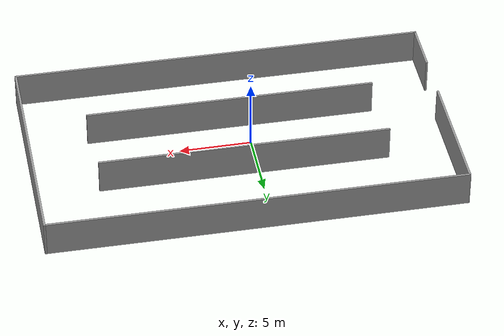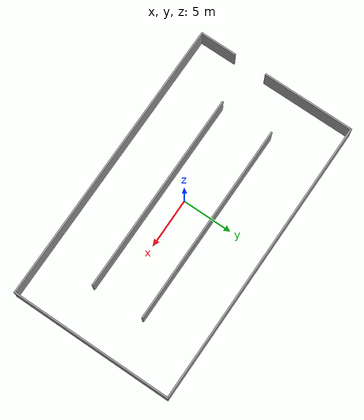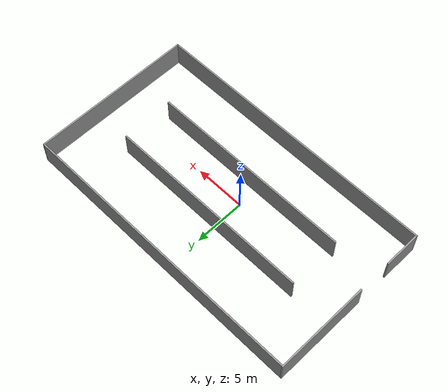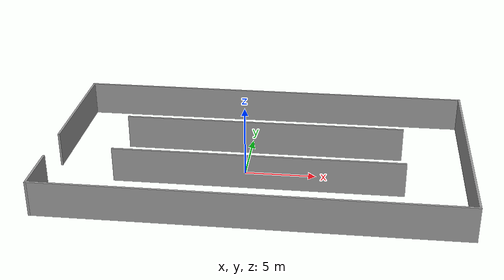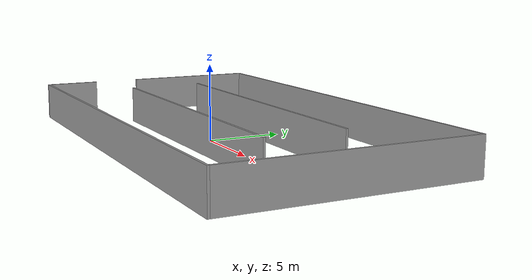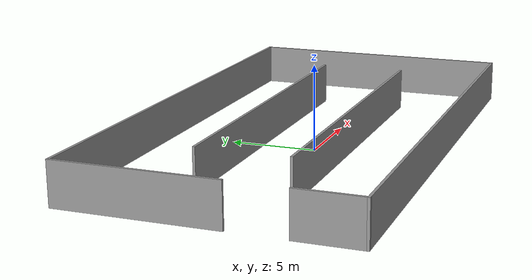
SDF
<?xml version='1.0'?>
<sdf version='1.7'>
  <model name='office'>
    <pose>1.065 0.81 0 0 -0 0</pose>
    <link name='Wall_11'>
      <collision name='Wall_11_Collision'>
        <geometry>
          <box>
            <size>20.25 0.15 2.5</size>
          </box>
        </geometry>
        <pose>0 0 1.25 0 -0 0</pose>
      </collision>
      <visual name='Wall_11_Visual'>
        <pose>0 0 1.25 0 -0 0</pose>
        <geometry>
          <box>
            <size>20.25 0.15 2.5</size>
          </box>
        </geometry>
        <material>
          <script>
            <uri>file://media/materials/scripts/gazebo.material</uri>
            <name>Gazebo/Grey</name>
          </script>
          <ambient>1 1 1 1</ambient>
        </material>
        <meta>
          <layer>0</layer>
        </meta>
      </visual>
      <pose>-0.095 2.35 0 0 -0 0</pose>
    </link>
    <link name='Wall_13'>
      <collision name='Wall_13_Collision'>
        <geometry>
          <box>
            <size>20.25 0.15 2.5</size>
          </box>
        </geometry>
        <pose>0 0 1.25 0 -0 0</pose>
      </collision>
      <visual name='Wall_13_Visual'>
        <pose>0 0 1.25 0 -0 0</pose>
        <geometry>
          <box>
            <size>20.25 0.15 2.5</size>
          </box>
        </geometry>
        <material>
          <script>
            <uri>file://media/materials/scripts/gazebo.material</uri>
            <name>Gazebo/Grey</name>
          </script>
          <ambient>1 1 1 1</ambient>
        </material>
        <meta>
          <layer>0</layer>
        </meta>
      </visual>
      <pose>0.005 -2.85 0 0 -0 0</pose>
    </link>
    <link name='Wall_2'>
      <collision name='Wall_2_Collision'>
        <geometry>
          <box>
            <size>9.25 0.15 2.5</size>
          </box>
        </geometry>
        <pose>0 0 1.25 0 -0 0</pose>
      </collision>
      <visual name='Wall_2_Visual'>
        <pose>0 0 1.25 0 -0 0</pose>
        <geometry>
          <box>
            <size>9.25 0.15 2.5</size>
          </box>
        </geometry>
        <material>
          <script>
            <uri>file://media/materials/scripts/gazebo.material</uri>
            <name>Gazebo/Grey</name>
          </script>
          <ambient>1 1 1 1</ambient>
        </material>
        <meta>
          <layer>0</layer>
        </meta>
      </visual>
      <pose>-14.425 3.5 0 0 -0 1.5708</pose>
    </link>
    <link name='Wall_3'>
      <collision name='Wall_3_Collision'>
        <geometry>
          <box>
            <size>29 0.15 2.5</size>
          </box>
        </geometry>
        <pose>0 0 1.25 0 -0 0</pose>
      </collision>
      <visual name='Wall_3_Visual'>
        <pose>0 0 1.25 0 -0 0</pose>
        <geometry>
          <box>
            <size>29 0.15 2.5</size>
          </box>
        </geometry>
        <material>
          <script>
            <uri>file://media/materials/scripts/gazebo.material</uri>
            <name>Gazebo/Grey</name>
          </script>
          <ambient>1 1 1 1</ambient>
        </material>
        <meta>
          <layer>0</layer>
        </meta>
      </visual>
      <pose>0 8.05 0 0 -0 0</pose>
    </link>
    <link name='Wall_4'>
      <collision name='Wall_4_Collision'>
        <geometry>
          <box>
            <size>16.25 0.15 2.5</size>
          </box>
        </geometry>
        <pose>0 0 1.25 0 -0 0</pose>
      </collision>
      <visual name='Wall_4_Visual'>
        <pose>0 0 1.25 0 -0 0</pose>
        <geometry>
          <box>
            <size>16.25 0.15 2.5</size>
          </box>
        </geometry>
        <material>
          <script>
            <uri>file://media/materials/scripts/gazebo.material</uri>
            <name>Gazebo/Grey</name>
          </script>
          <ambient>1 1 1 1</ambient>
        </material>
        <meta>
          <layer>0</layer>
        </meta>
      </visual>
      <pose>14.425 -0 0 0 -0 -1.5708</pose>
    </link>
    <link name='Wall_5'>
      <collision name='Wall_5_Collision'>
        <geometry>
          <box>
            <size>29 0.15 2.5</size>
          </box>
        </geometry>
        <pose>0 0 1.25 0 -0 0</pose>
      </collision>
      <visual name='Wall_5_Visual'>
        <pose>0 0 1.25 0 -0 0</pose>
        <geometry>
          <box>
            <size>29 0.15 2.5</size>
          </box>
        </geometry>
        <material>
          <script>
            <uri>file://media/materials/scripts/gazebo.material</uri>
            <name>Gazebo/Grey</name>
          </script>
          <ambient>1 1 1 1</ambient>
        </material>
        <meta>
          <layer>0</layer>
        </meta>
      </visual>
      <pose>0 -8.05 0 0 -0 3.14159</pose>
    </link>
    <link name='Wall_6'>
      <collision name='Wall_6_Collision'>
        <geometry>
          <box>
            <size>3.75 0.15 2.5</size>
          </box>
        </geometry>
        <pose>0 0 1.25 0 -0 0</pose>
      </collision>
      <visual name='Wall_6_Visual'>
        <pose>0 0 1.25 0 -0 0</pose>
        <geometry>
          <box>
            <size>3.75 0.15 2.5</size>
          </box>
        </geometry>
        <material>
          <script>
            <uri>file://media/materials/scripts/gazebo.material</uri>
            <name>Gazebo/Grey</name>
          </script>
          <ambient>1 1 1 1</ambient>
        </material>
        <meta>
          <layer>0</layer>
        </meta>
      </visual>
      <pose>-14.425 -6.25 0 0 -0 1.5708</pose>
    </link>
    <static>1</static>
  </model>
</sdf>
